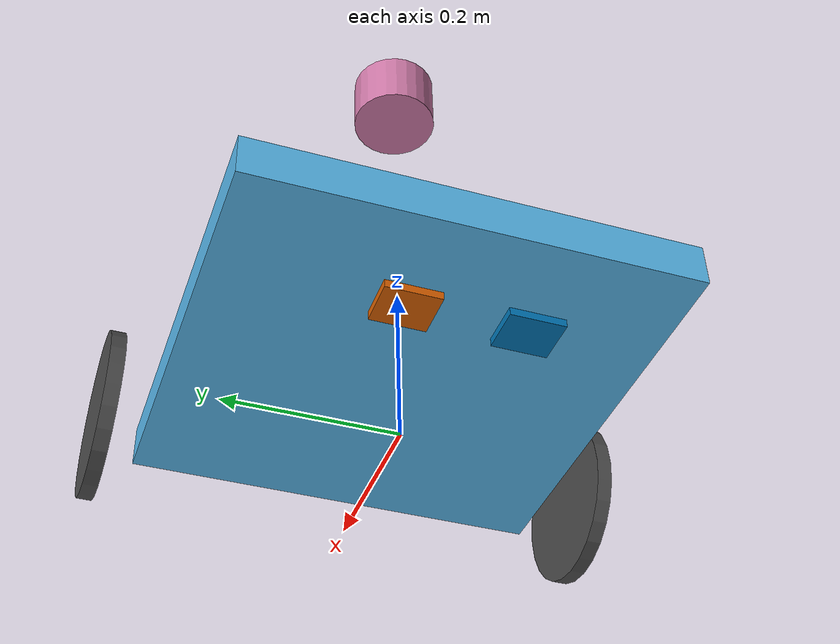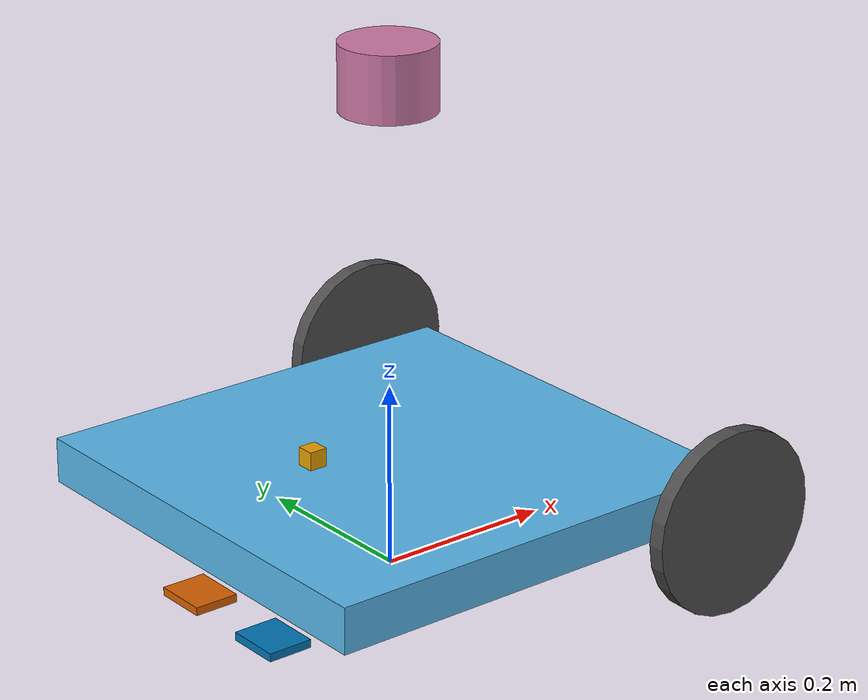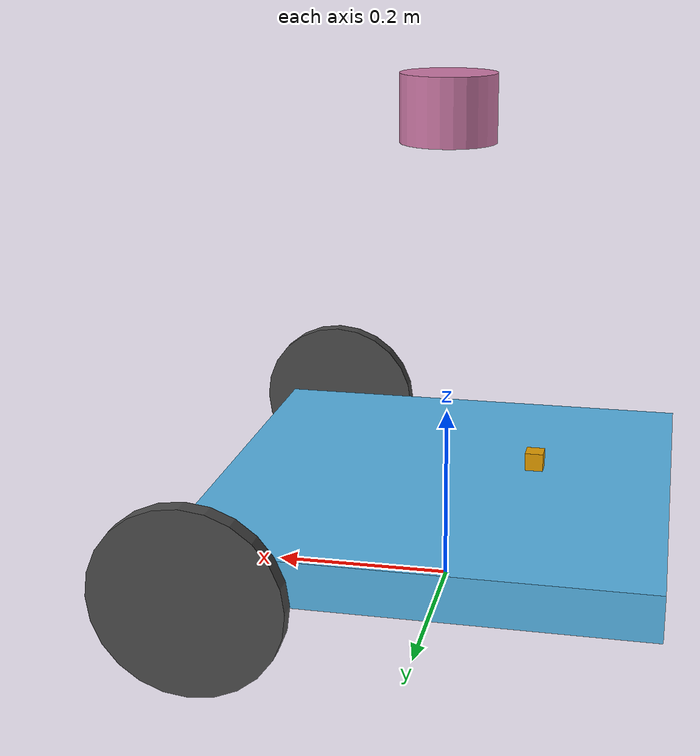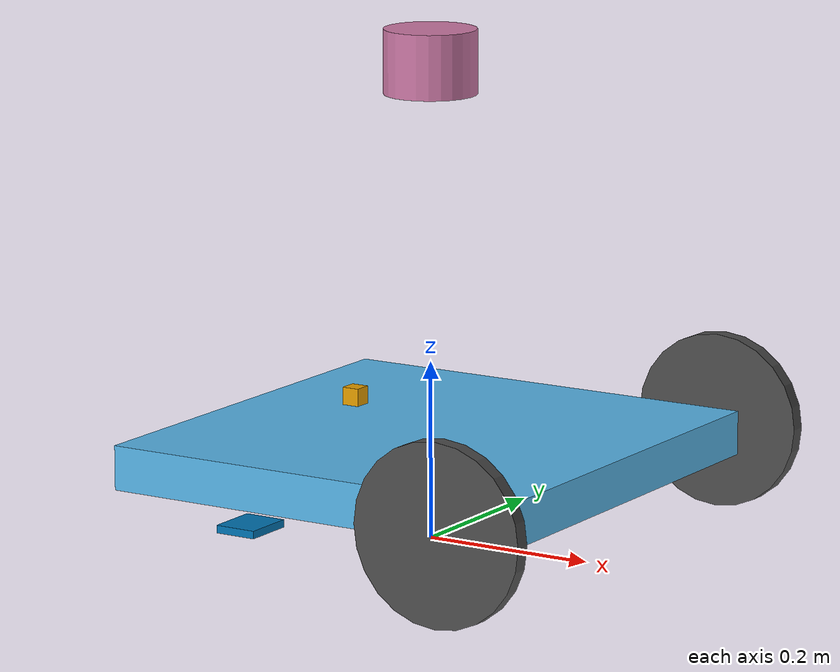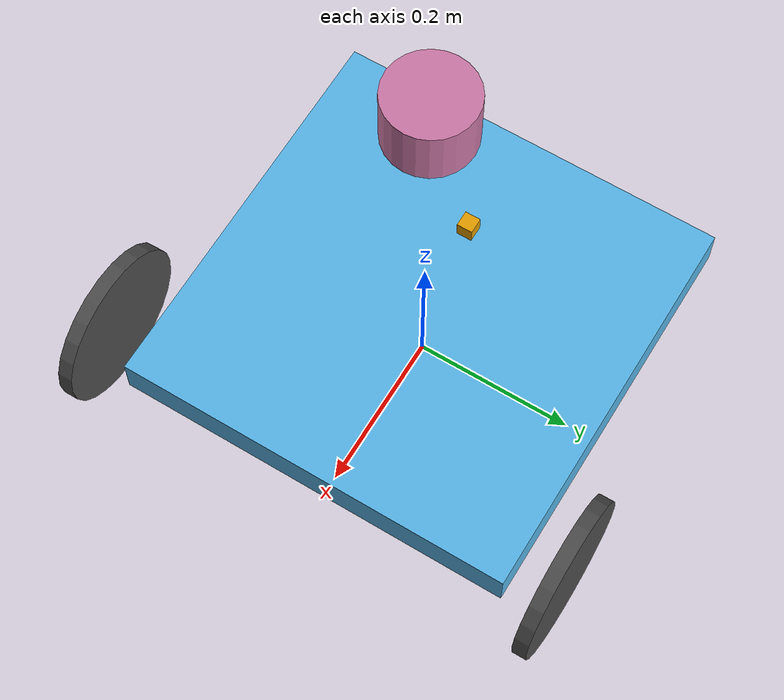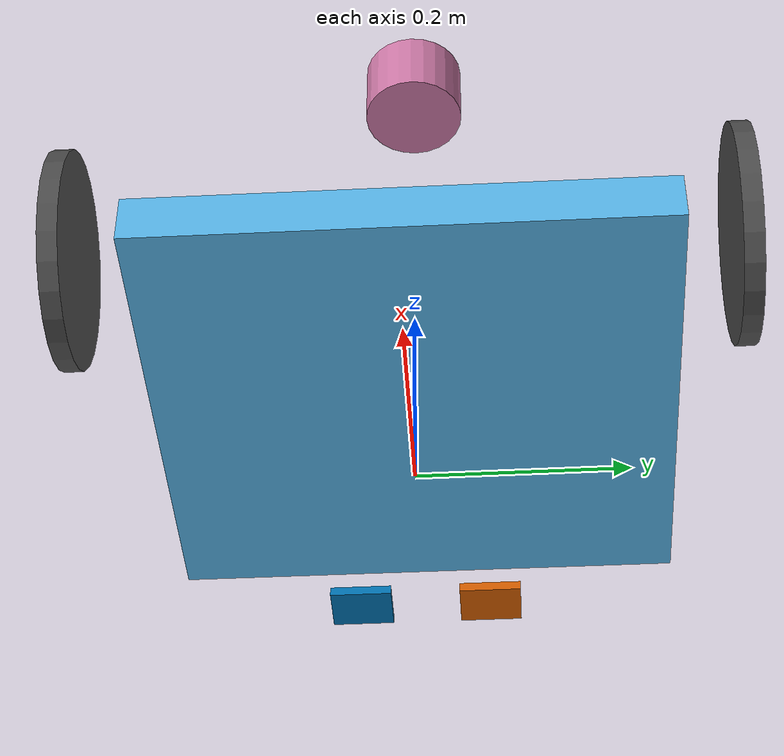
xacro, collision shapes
<?xml version="1.0"?>
<robot xmlns:xacro="http://www.ros.org/wiki/xacro" name="velodyne_example">
  <xacro:arg name="gpu" default="false"/>
  <xacro:property name="gpu" value="$(arg gpu)" />
  <xacro:arg name="organize_cloud" default="false"/>
  <xacro:property name="organize_cloud" value="$(arg organize_cloud)" />
  <material name="black">
        <color rgba="0.0 0.0 0.0 1.0"/>
    </material>

    <material name="dark">
      <color rgba="0.3 0.3 0.3 1.0"/>
    </material>
  <!-- Base Footprint -->
  <link name="base_footprint" />

  <!-- Base Link -->
  <joint name="footprint" type="fixed" >
   <parent link="base_footprint"/>
    <child link="base_link" />
    <origin xyz="0 0 0.1" rpy="0 0 0" />
  </joint>
  <link name="base_link" >
    <visual>
      <geometry>
        <box size="0.5 0.5 0.05" />
      </geometry>
    </visual>
    <collision>
      <geometry>
        <box size="0.5 0.5 0.05" />
      </geometry>

    </collision>
    <inertial>
      <origin xyz="0 0 0"/>
      <mass value="10"/>
      <inertia ixx="3.0" ixy="0.0" ixz="0.0"
               iyy="3.0" iyz="0.0"
               izz="3.0" />
    </inertial>
  </link>

<joint name="wheel_left_joint" type="continuous">
    <parent link="base_link"/>
    <child link="wheel_left_link"/>
    <origin xyz="0.2 0.3 0.0" rpy="-1.57 0 0"/>
    <axis xyz="0 0 1"/>
  </joint>

  <link name="wheel_left_link">
    <visual>
      <origin xyz="0 0 0" rpy="1.57 0 0"/>
      <geometry>
        <mesh filename="package://velodyne_description/meshes/wheels/left_tire.stl" scale="0.003 0.003 0.003"/>
      </geometry>
      <material name="dark"/>
    </visual>

    <collision>
      <origin xyz="0 0 0" rpy="0 0 0"/>
      <geometry>
        <cylinder length="0.018" radius="0.1"/>
      </geometry>
    </collision>

    <inertial>
      <origin xyz="0 0 0" />
      <mass value="2.8498940e-02" />
      <inertia ixx="1.1175580e-05" ixy="-4.2369783e-11" ixz="-5.9381719e-09"
               iyy="1.1192413e-05" iyz="-1.4400107e-11"
               izz="2.0712558e-05" />
      </inertial>
  </link>

  <joint name="wheel_right_joint" type="continuous">
    <parent link="base_link"/>
    <child link="wheel_right_link"/>
    <origin xyz="0.2 -0.3 0.0" rpy="-1.57 0 0"/>
    <axis xyz="0 0 1"/>
  </joint>

  <link name="wheel_right_link">
    <visual>
      <origin xyz="0 0 0" rpy="1.57 0 0"/>
      <geometry>
        <mesh filename="package://velodyne_description/meshes/wheels/right_tire.stl" scale="0.003 0.003 0.003"/>
      </geometry>
      <material name="dark"/>
    </visual>

    <collision>
      <origin xyz="0 0 0" rpy="0 0 0"/>
      <geometry>
        <cylinder length="0.018" radius="0.1"/>
      </geometry>
    </collision>

    <inertial>
      <origin xyz="0 0 0" />
      <mass value="2.8498940e-02" />
      <inertia ixx="1.1175580e-05" ixy="-4.2369783e-11" ixz="-5.9381719e-09"
               iyy="1.1192413e-05" iyz="-1.4400107e-11"
               izz="2.0712558e-05" />
      </inertial>
  </link>

  <joint name="caster_back_right_joint" type="fixed">
    <parent link="base_link"/>
    <child link="caster_back_right_link"/>
    <origin xyz="-0.2 -0.064 -0.1" rpy="-1.57 0 0"/>
  </joint>

  <link name="caster_back_right_link">
    <collision>
      <origin xyz="0 0.001 0" rpy="0 0 0"/>
      <geometry>
        <box size="0.050 0.009 0.06"/>
      </geometry>
    </collision>

    <inertial>
      <origin xyz="0 0 0" />
      <mass value="0.005" />
      <inertia ixx="0.001" ixy="0.0" ixz="0.0"
               iyy="0.001" iyz="0.0"
               izz="0.001" />
    </inertial>
  </link>
  <gazebo reference="caster_back_right_link">
      <mu1>0</mu1>
      <mu2>0</mu2>
  </gazebo>

  <joint name="caster_back_left_joint" type="fixed">
    <parent link="base_link"/>
    <child link="caster_back_left_link"/>
    <origin xyz="-0.2 0.064 -0.1" rpy="-1.57 0 0"/>
  </joint>

  <link name="caster_back_left_link">
    <collision>
      <origin xyz="0 0.001 0" rpy="0 0 0"/>
      <geometry>
        <box size="0.050 0.009 0.06"/>
      </geometry>
    </collision>

    <inertial>
      <origin xyz="0 0 0" />
      <mass value="0.005" />
      <inertia ixx="0.001" ixy="0.0" ixz="0.0"
               iyy="0.001" iyz="0.0"
               izz="0.001" />
    </inertial>
  </link>
  <gazebo reference="caster_back_left_link">
      <mu1>0</mu1>
      <mu2>0</mu2>
  </gazebo>

    <gazebo>
      <plugin name="velodyne_controller" filename="libgazebo_ros_diff_drive.so">
        <commandTopic>cmd_vel</commandTopic>
        <odometryTopic>odom</odometryTopic>
        <odometryFrame>odom</odometryFrame>
        <odometrySource>world</odometrySource>
        <publishOdomTF>true</publishOdomTF>
        <robotBaseFrame>base_footprint</robotBaseFrame>
        <publishWheelTF>true</publishWheelTF>
        <publishWheelJointState>true</publishWheelJointState>
        <publishTf>true</publishTf>
        <legacyMode>false</legacyMode>
        <updateRate>50</updateRate>
        <leftJoint>wheel_left_joint</leftJoint>
        <rightJoint>wheel_right_joint</rightJoint>
        <wheelSeparation>0.160</wheelSeparation>
        <wheelDiameter>0.066</wheelDiameter>
        <wheelAcceleration>1</wheelAcceleration>
        <wheelTorque>10</wheelTorque>
        <rosDebugLevel>na</rosDebugLevel>
      </plugin>
    </gazebo>

  <xacro:include filename="$(find velodyne_description)/urdf/VLP-16.urdf.xacro"/>
  <xacro:include filename="$(find velodyne_description)/urdf/imu.urdf.xacro"/>
  <xacro:VLP-16 parent="base_link" name="velodyne" topic="/velodyne_points" organize_cloud="${organize_cloud}" hz="10" samples="440" gpu="${gpu}">
    <origin xyz="0 0 0.4" rpy="0 0 0" />
  </xacro:VLP-16>
  <xacro:imu_sensor xyz="-0.1 0 ${0.04 + 0.01}"
                    rpy="0 0 0"
                    parent="base_link">
      </xacro:imu_sensor>

</robot>

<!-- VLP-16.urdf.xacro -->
<robot xmlns:xacro="http://www.ros.org/wiki/xacro" name="VLP-16">
  <xacro:property name="M_PI" value="3.1415926535897931" />
  <xacro:macro name="VLP-16" params="*origin is_sim:=true parent:=base_link name:=velodyne tf_prefix:='' topic:=/velodyne_points organize_cloud:=false hz:=10 lasers:=16 samples:=1875 collision_range:=0.3 min_range:=0.0 max_range:=100.0 noise:=0.008 min_angle:=-${M_PI} max_angle:=${M_PI} gpu:=false">

    <joint name="${name}_base_mount_joint" type="fixed">
      <xacro:insert_block name="origin" />
      <parent link="${parent}"/>
      <child link="${name}_base_link"/>
    </joint>

    <link name="${name}_base_link">
      <inertial>
        <mass value="0.83"/>
        <origin xyz="0 0 0.03585"/>
        <inertia ixx="${(0.83 * (3.0*0.0516*0.0516 + 0.0717*0.0717)) / 12.0}" ixy="0" ixz="0"
          iyy="${(0.83 * (3.0*0.0516*0.0516 + 0.0717*0.0717)) / 12.0}" iyz="0"
          izz="${0.5 * 0.83 * (0.0516*0.0516)}"/>
      </inertial>
      <visual>
        <geometry>
          <mesh filename="package://velodyne_description/meshes/VLP16_base_1.dae" />
        </geometry>
      </visual>
      <visual>
        <geometry>
          <mesh filename="package://velodyne_description/meshes/VLP16_base_2.dae" />
        </geometry>
      </visual>
      <collision>
        <origin rpy="0 0 0" xyz="0 0 0.03585"/>
        <geometry>
          <cylinder radius="0.0516" length="0.0717"/>
        </geometry>
      </collision>
    </link>

    <joint name="${name}_base_scan_joint" type="fixed" >
      <origin xyz="0 0 0.0377" rpy="0 0 0" />
      <parent link="${name}_base_link" />
      <child link="${name}"/>
    </joint>

    <link name="${name}">
      <inertial>
        <mass value="0.01"/>
        <origin xyz="0 0 0"/>
        <inertia ixx="1e-7" ixy="0" ixz="0" iyy="1e-7" iyz="0" izz="1e-7"/>
      </inertial>
      <visual>
        <origin xyz="0 0 -0.0377" />
        <geometry>
          <mesh filename="package://velodyne_description/meshes/VLP16_scan.dae" />
        </geometry>
      </visual>
      <collision>
        <geometry>
          <sphere radius="0"/>
        </geometry>
      </collision>
    </link>

    <!-- Gazebo requires the velodyne_gazebo_plugins package -->
    <xacro:if value="${is_sim}">
        <gazebo reference="${name}">
            <xacro:if value="${gpu}">
                <sensor type="gpu_ray" name="${name}-VLP16">
                <pose>0 0 0 0 0 0</pose>
                <visualize>false</visualize>
                <update_rate>${hz}</update_rate>
                <ray>
                    <scan>
                    <horizontal>
                        <samples>${samples}</samples>
                        <resolution>1</resolution>
                        <min_angle>${min_angle}</min_angle>
                        <max_angle>${max_angle}</max_angle>
                    </horizontal>
                    <vertical>
                        <samples>${lasers}</samples>
                        <resolution>1</resolution>
                        <min_angle>-${15.0*M_PI/180.0}</min_angle>
                        <max_angle> ${15.0*M_PI/180.0}</max_angle>
                    </vertical>
                    </scan>
                    <range>
                    <min>${collision_range}</min>
                    <max>${max_range+1}</max>
                    <resolution>0.001</resolution>
                    </range>
                    <noise>
                    <type>gaussian</type>
                    <mean>0.0</mean>
                    <stddev>0.0</stddev>
                    </noise>
                </ray>
                <plugin name="gazebo_ros_laser_controller" filename="libgazebo_ros_velodyne_laser.so">
                    <ros>
                    <namespace>/${name}</namespace>
                    <remapping>~/out:=${topic}</remapping>
                    </ros>
                    <tf_prefix>${tf_prefix}</tf_prefix>
                    <frame_name>${name}</frame_name>
                    <organize_cloud>${organize_cloud}</organize_cloud>
                    <min_range>${min_range}</min_range>
                    <max_range>${max_range}</max_range>
                    <gaussian_noise>${noise}</gaussian_noise>
                </plugin>
                </sensor>
            </xacro:if>
            <xacro:unless value="${gpu}">
                <sensor type="ray" name="${name}-VLP16">
                <pose>0 0 0 0 0 0</pose>
                <visualize>false</visualize>
                <update_rate>${hz}</update_rate>
                <ray>
                    <scan>
                    <horizontal>
                        <samples>${samples}</samples>
                        <resolution>1</resolution>
                        <min_angle>${min_angle}</min_angle>
                        <max_angle>${max_angle}</max_angle>
                    </horizontal>
                    <vertical>
                        <samples>${lasers}</samples>
                        <resolution>1</resolution>
                        <min_angle>-${15.0*M_PI/180.0}</min_angle>
                        <max_angle> ${15.0*M_PI/180.0}</max_angle>
                    </vertical>
                    </scan>
                    <range>
                    <min>${collision_range}</min>
                    <max>${max_range+1}</max>
                    <resolution>0.001</resolution>
                    </range>
                    <noise>
                    <type>gaussian</type>
                    <mean>0.0</mean>
                    <stddev>0.0</stddev>
                    </noise>
                </ray>
                <plugin name="gazebo_ros_laser_controller" filename="libgazebo_ros_velodyne_laser.so">
                    <ros>
                    <namespace>/${name}</namespace>
                    <remapping>~/out:=${topic}</remapping>
                    </ros>
                    <tf_prefix>${tf_prefix}</tf_prefix>
                    <frame_name>${name}</frame_name>
                    <organize_cloud>${organize_cloud}</organize_cloud>
                    <min_range>${min_range}</min_range>
                    <max_range>${max_range}</max_range>
                    <gaussian_noise>${noise}</gaussian_noise>
                </plugin>
                </sensor>
            </xacro:unless>
        </gazebo>
    </xacro:if>

  </xacro:macro>
</robot>

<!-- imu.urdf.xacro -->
<robot xmlns:xacro="http://www.ros.org/wiki/xacro" name="imu">

<xacro:macro name="imu_sensor" params="xyz rpy parent">
    <joint name="imu_sensor_joint" type="fixed">
        <axis xyz="0 0 1" />
        <origin xyz="${xyz}" rpy="${rpy}"/>
        <parent link="${parent}"/>
        <child link="imu_sensor_link"/>
    </joint>

    <link name="imu_sensor_link">
        <collision>
            <origin xyz="0 0 0" rpy="0 0 0"/>
            <geometry>
                <box size="0.02 0.02 0.02"/>
            </geometry>
        </collision>
        <visual>
            <origin xyz="0 0 0" rpy="0 0 0"/>
            <geometry>
                <box size="0.02 0.02 0.02"/>
            </geometry>
        </visual>
        <inertial>
            <mass value="0.001" />
            <origin xyz="0 0 0" rpy="0 0 0"/>
            <inertia ixx="0.00000015" ixy="0" ixz="0" iyy="0.00000015" iyz="0" izz="0.00000015" />
        </inertial>
    </link>

    <gazebo reference="imu_sensor_link">
        <gravity>true</gravity>
        <sensor name='imu_sensor' type='imu'>
            <always_on>1</always_on>
            <update_rate>10</update_rate>
            <visualize>1</visualize>
            <topic>__default_topic__</topic>
            <plugin name='imu_plugin' filename='libgazebo_ros_imu_sensor.so'>
                <topicName>imu_data</topicName>
                <bodyName>imu_sensor_link</bodyName>
                <updateRateHZ>10.0</updateRateHZ>
                <gaussianNoise>0.0</gaussianNoise>
                <xyzOffset>0 0 0</xyzOffset>
                <rpyOffset>0 0 0</rpyOffset>
            </plugin>
            <pose>0 0 0 0 0 0</pose>
        </sensor>
    </gazebo>

</xacro:macro>

</robot>
